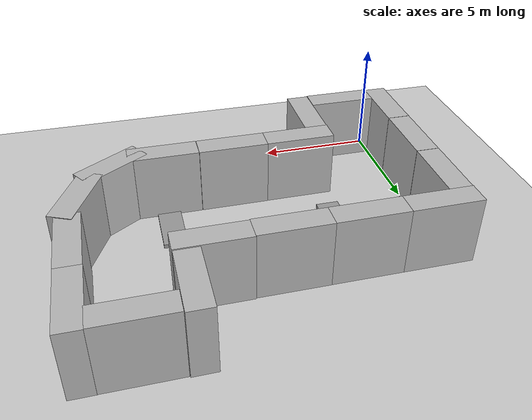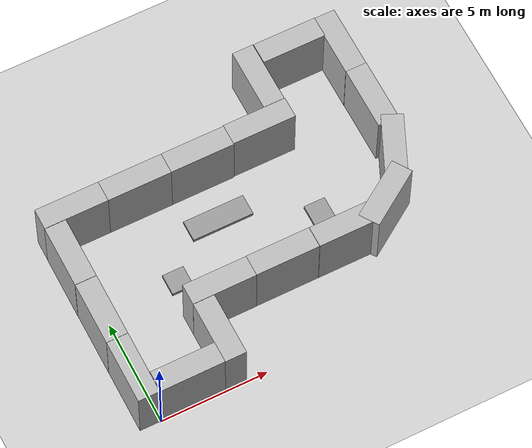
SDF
<sdf version="1.6">
 <world name="default">
  <light name="sun" type="directional">
   <pose>0 0 10 0 -0 0</pose>
   <diffuse>0.8 0.8 0.8 1</diffuse>
   <specular>0.2 0.2 0.2 1</specular>
   <attenuation>
    <range>1000</range>
    <constant>0.9</constant>
    <linear>0.01</linear>
    <quadratic>0.001</quadratic>
   </attenuation>
   <direction>-0.5 0.1 -0.9</direction>
  </light>
  <model name="ground_plane">
   <static>1</static>
   <link name="link">
    <collision name="collision">
     <geometry><plane><normal>0 0 1</normal><size>100 100</size></plane></geometry>
     <surface>
      <contact><collide_bitmask>65535</collide_bitmask></contact>
      <friction><ode><mu>100</mu><mu2>50</mu2></ode></friction>
     </surface>
    </collision>
    <visual name="visual">
     <cast_shadows>0</cast_shadows>
     <geometry><plane><normal>0 0 1</normal><size>100 100</size></plane></geometry>
     <material>
      <script><uri>file://media/materials/scripts/gazebo.material</uri><name>Gazebo/Grey</name></script>
     </material>
    </visual>
   </link>
  </model>
  <gravity>0 0 -9.8</gravity>
  <magnetic_field>6e-06 2.3e-05 -4.2e-05</magnetic_field>
  <atmosphere type="adiabatic"/>
  <physics name="default_physics" default="0" type="ode">
   <max_step_size>0.001</max_step_size>
   <real_time_factor>1</real_time_factor>
   <real_time_update_rate>1000</real_time_update_rate>
  </physics>
  <scene><ambient>0.4 0.4 0.4 1</ambient><background>0.7 0.7 0.7 1</background><shadows>1</shadows></scene>
  <spherical_coordinates>
   <surface_model>EARTH_WGS84</surface_model>
   <latitude_deg>0</latitude_deg>
   <longitude_deg>0</longitude_deg>
   <elevation>0</elevation>
   <heading_deg>0</heading_deg>
  </spherical_coordinates>
  <model name="brick_box_3x1x3">
   <static>1</static>
   <link name="chassis">
    <pose>0 0 1.5 0 -0 0</pose>
    <collision name="collision"><geometry><box><size>3 1 3</size></box></geometry></collision>
    <visual name="visual">
     <geometry><mesh><uri>model://brick_box_3x1x3/meshes/simple_box.dae</uri><scale>3 1 3</scale></mesh></geometry>
     <material>
      <script>
       <uri>model://brick_box_3x1x3/materials/scripts</uri>
       <uri>model://brick_box_3x1x3/materials/textures</uri>
       <name>BrickBox/Diffuse</name>
      </script>
     </material>
    </visual>
   </link>
   <pose>1.51624 0.50191 0 0 -0 0</pose>
  </model>
  <model name="brick_box_3x1x3_0">
   <static>1</static>
   <link name="chassis">
    <pose>0 0 1.5 0 -0 0</pose>
    <collision name="collision"><geometry><box><size>3 1 3</size></box></geometry></collision>
    <visual name="visual">
     <geometry><mesh><uri>model://brick_box_3x1x3/meshes/simple_box.dae</uri><scale>3 1 3</scale></mesh></geometry>
     <material>
      <script>
       <uri>model://brick_box_3x1x3/materials/scripts</uri>
       <uri>model://brick_box_3x1x3/materials/textures</uri>
       <name>BrickBox/Diffuse</name>
      </script>
     </material>
    </visual>
   </link>
   <pose>3.51375 1.50393 -0.02794 0 -0 1.5708</pose>
  </model>
  <model name="brick_box_3x1x3_0_clone">
   <static>1</static>
   <link name="chassis">
    <pose>0 0 1.5 0 -0 0</pose>
    <collision name="collision"><geometry><box><size>3 1 3</size></box></geometry></collision>
    <visual name="visual">
     <geometry><mesh><uri>model://brick_box_3x1x3/meshes/simple_box.dae</uri><scale>3 1 3</scale></mesh></geometry>
     <material>
      <script>
       <uri>model://brick_box_3x1x3/materials/scripts</uri>
       <uri>model://brick_box_3x1x3/materials/textures</uri>
       <name>BrickBox/Diffuse</name>
      </script>
     </material>
    </visual>
   </link>
   <pose>-0.499565 1.52608 -0.02794 0 -0 1.5708</pose>
  </model>
  <model name="brick_box_3x1x3_clone">
   <static>1</static>
   <link name="chassis">
    <pose>0 0 1.5 0 -0 0</pose>
    <collision name="collision"><geometry><box><size>3 1 3</size></box></geometry></collision>
    <visual name="visual">
     <geometry><mesh><uri>model://brick_box_3x1x3/meshes/simple_box.dae</uri><scale>3 1 3</scale></mesh></geometry>
     <material>
      <script>
       <uri>model://brick_box_3x1x3/materials/scripts</uri>
       <uri>model://brick_box_3x1x3/materials/textures</uri>
       <name>BrickBox/Diffuse</name>
      </script>
     </material>
    </visual>
   </link>
   <pose>4.50924 3.48498 0 0 -0 0</pose>
  </model>
  <model name="brick_box_3x1x3_clone_clone">
   <static>1</static>
   <link name="chassis">
    <pose>0 0 1.5 0 -0 0</pose>
    <collision name="collision"><geometry><box><size>3 1 3</size></box></geometry></collision>
    <visual name="visual">
     <geometry><mesh><uri>model://brick_box_3x1x3/meshes/simple_box.dae</uri><scale>3 1 3</scale></mesh></geometry>
     <material>
      <script>
       <uri>model://brick_box_3x1x3/materials/scripts</uri>
       <uri>model://brick_box_3x1x3/materials/textures</uri>
       <name>BrickBox/Diffuse</name>
      </script>
     </material>
    </visual>
   </link>
   <pose>7.50541 3.49349 0 0 -0 0</pose>
  </model>
  <model name="brick_box_3x1x3_0_clone_clone">
   <static>1</static>
   <link name="chassis">
    <pose>0 0 1.5 0 -0 0</pose>
    <collision name="collision"><geometry><box><size>3 1 3</size></box></geometry></collision>
    <visual name="visual">
     <geometry><mesh><uri>model://brick_box_3x1x3/meshes/simple_box.dae</uri><scale>3 1 3</scale></mesh></geometry>
     <material>
      <script>
       <uri>model://brick_box_3x1x3/materials/scripts</uri>
       <uri>model://brick_box_3x1x3/materials/textures</uri>
       <name>BrickBox/Diffuse</name>
      </script>
     </material>
    </visual>
   </link>
   <pose>-0.501636 4.53368 -0.02794 0 -0 1.5708</pose>
  </model>
  <model name="brick_box_3x1x3_0_clone_clone_clone">
   <static>1</static>
   <link name="chassis">
    <pose>0 0 1.5 0 -0 0</pose>
    <collision name="collision"><geometry><box><size>3 1 3</size></box></geometry></collision>
    <visual name="visual">
     <geometry><mesh><uri>model://brick_box_3x1x3/meshes/simple_box.dae</uri><scale>3 1 3</scale></mesh></geometry>
     <material>
      <script>
       <uri>model://brick_box_3x1x3/materials/scripts</uri>
       <uri>model://brick_box_3x1x3/materials/textures</uri>
       <name>BrickBox/Diffuse</name>
      </script>
     </material>
    </visual>
   </link>
   <pose>-0.506311 7.54462 -0.02794 0 -0 1.5708</pose>
  </model>
  <model name="brick_box_3x1x3_clone_clone_0">
   <static>1</static>
   <link name="chassis">
    <pose>0 0 1.5 0 -0 0</pose>
    <collision name="collision"><geometry><box><size>3 1 3</size></box></geometry></collision>
    <visual name="visual">
     <geometry><mesh><uri>model://brick_box_3x1x3/meshes/simple_box.dae</uri><scale>3 1 3</scale></mesh></geometry>
     <material>
      <script>
       <uri>model://brick_box_3x1x3/materials/scripts</uri>
       <uri>model://brick_box_3x1x3/materials/textures</uri>
       <name>BrickBox/Diffuse</name>
      </script>
     </material>
    </visual>
   </link>
   <pose>0.497941 9.50684 0 0 -0 0</pose>
  </model>
  <model name="brick_box_3x1x3_clone_clone_0_clone">
   <static>1</static>
   <link name="chassis">
    <pose>0 0 1.5 0 -0 0</pose>
    <collision name="collision"><geometry><box><size>3 1 3</size></box></geometry></collision>
    <visual name="visual">
     <geometry><mesh><uri>model://brick_box_3x1x3/meshes/simple_box.dae</uri><scale>3 1 3</scale></mesh></geometry>
     <material>
      <script>
       <uri>model://brick_box_3x1x3/materials/scripts</uri>
       <uri>model://brick_box_3x1x3/materials/textures</uri>
       <name>BrickBox/Diffuse</name>
      </script>
     </material>
    </visual>
   </link>
   <pose>3.49682 9.50712 0 0 -0 0</pose>
  </model>
  <model name="brick_box_3x1x3_clone_clone_0_clone_clone">
   <static>1</static>
   <link name="chassis">
    <pose>0 0 1.5 0 -0 0</pose>
    <collision name="collision"><geometry><box><size>3 1 3</size></box></geometry></collision>
    <visual name="visual">
     <geometry><mesh><uri>model://brick_box_3x1x3/meshes/simple_box.dae</uri><scale>3 1 3</scale></mesh></geometry>
     <material>
      <script>
       <uri>model://brick_box_3x1x3/materials/scripts</uri>
       <uri>model://brick_box_3x1x3/materials/textures</uri>
       <name>BrickBox/Diffuse</name>
      </script>
     </material>
    </visual>
   </link>
   <pose>6.49688 9.5128 0 0 -0 0</pose>
  </model>
  <model name="brick_box_3x1x3_clone_clone_0_clone_clone_clone_0">
   <static>1</static>
   <link name="chassis">
    <pose>0 0 1.5 0 -0 0</pose>
    <collision name="collision"><geometry><box><size>3 1 3</size></box></geometry></collision>
    <visual name="visual">
     <geometry><mesh><uri>model://brick_box_3x1x3/meshes/simple_box.dae</uri><scale>3 1 3</scale></mesh></geometry>
     <material>
      <script>
       <uri>model://brick_box_3x1x3/materials/scripts</uri>
       <uri>model://brick_box_3x1x3/materials/textures</uri>
       <name>BrickBox/Diffuse</name>
      </script>
     </material>
    </visual>
   </link>
   <pose>9.49333 9.54908 0 0 -0 0</pose>
  </model>
  <model name="brick_box_3x1x3_clone_clone_0_clone_clone_clone_0_clone">
   <static>1</static>
   <link name="chassis">
    <pose>0 0 1.5 0 -0 0</pose>
    <collision name="collision"><geometry><box><size>3 1 3</size></box></geometry></collision>
    <visual name="visual">
     <geometry><mesh><uri>model://brick_box_3x1x3/meshes/simple_box.dae</uri><scale>3 1 3</scale></mesh></geometry>
     <material>
      <script>
       <uri>model://brick_box_3x1x3/materials/scripts</uri>
       <uri>model://brick_box_3x1x3/materials/textures</uri>
       <name>BrickBox/Diffuse</name>
      </script>
     </material>
    </visual>
   </link>
   <pose>10.5143 3.49171 0 0 -0 0</pose>
  </model>
  <model name="brick_box_3x1x3_clone_clone_0_clone_clone_clone_0_clone_clone">
   <static>1</static>
   <link name="chassis">
    <pose>0 0 1.5 0 -0 0</pose>
    <collision name="collision"><geometry><box><size>3 1 3</size></box></geometry></collision>
    <visual name="visual">
     <geometry><mesh><uri>model://brick_box_3x1x3/meshes/simple_box.dae</uri><scale>3 1 3</scale></mesh></geometry>
     <material>
      <script>
       <uri>model://brick_box_3x1x3/materials/scripts</uri>
       <uri>model://brick_box_3x1x3/materials/textures</uri>
       <name>BrickBox/Diffuse</name>
      </script>
     </material>
    </visual>
   </link>
   <pose>12.4927 12.5439 0 0 -0 0</pose>
  </model>
  <model name="brick_box_3x1x3_0_clone_clone_clone_clone">
   <static>1</static>
   <link name="chassis">
    <pose>0 0 1.5 0 -0 0</pose>
    <collision name="collision"><geometry><box><size>3 1 3</size></box></geometry></collision>
    <visual name="visual">
     <geometry><mesh><uri>model://brick_box_3x1x3/meshes/simple_box.dae</uri><scale>3 1 3</scale></mesh></geometry>
     <material>
      <script>
       <uri>model://brick_box_3x1x3/materials/scripts</uri>
       <uri>model://brick_box_3x1x3/materials/textures</uri>
       <name>BrickBox/Diffuse</name>
      </script>
     </material>
    </visual>
   </link>
   <pose>10.4728 11.571 -0.02794 0 -0 1.5708</pose>
  </model>
  <model name="brick_box_3x1x3_0_clone_clone_clone_clone_0">
   <static>1</static>
   <link name="chassis">
    <pose>0 0 1.5 0 -0 0</pose>
    <collision name="collision"><geometry><box><size>3 1 3</size></box></geometry></collision>
    <visual name="visual">
     <geometry><mesh><uri>model://brick_box_3x1x3/meshes/simple_box.dae</uri><scale>3 1 3</scale></mesh></geometry>
     <material>
      <script>
       <uri>model://brick_box_3x1x3/materials/scripts</uri>
       <uri>model://brick_box_3x1x3/materials/textures</uri>
       <name>BrickBox/Diffuse</name>
      </script>
     </material>
    </visual>
   </link>
   <pose>14.4625 8.53431 -0.02794 0 -0 1.5708</pose>
  </model>
  <model name="brick_box_3x1x3_0_clone_clone_clone_clone_0_clone">
   <static>1</static>
   <link name="chassis">
    <pose>0 0 1.5 0 -0 0</pose>
    <collision name="collision"><geometry><box><size>3 1 3</size></box></geometry></collision>
    <visual name="visual">
     <geometry><mesh><uri>model://brick_box_3x1x3/meshes/simple_box.dae</uri><scale>3 1 3</scale></mesh></geometry>
     <material>
      <script>
       <uri>model://brick_box_3x1x3/materials/scripts</uri>
       <uri>model://brick_box_3x1x3/materials/textures</uri>
       <name>BrickBox/Diffuse</name>
      </script>
     </material>
    </visual>
   </link>
   <pose>14.4528 11.5347 -0.02794 0 -0 1.5708</pose>
  </model>
  <model name="brick_box_3x1x3_clone_clone_0_clone_clone_clone_0_clone_clone_0">
   <static>1</static>
   <link name="chassis">
    <pose>0 0 1.5 0 -0 0</pose>
    <collision name="collision"><geometry><box><size>3 1 3</size></box></geometry></collision>
    <visual name="visual">
     <geometry><mesh><uri>model://brick_box_3x1x3/meshes/simple_box.dae</uri><scale>3 1 3</scale></mesh></geometry>
     <material>
      <script>
       <uri>model://brick_box_3x1x3/materials/scripts</uri>
       <uri>model://brick_box_3x1x3/materials/textures</uri>
       <name>BrickBox/Diffuse</name>
      </script>
     </material>
    </visual>
   </link>
   <pose>12.69 3.9899 0 0 -0 0.588898</pose>
  </model>
  <model name="brick_box_3x1x3_clone_clone_0_clone_clone_clone_0_clone_clone_0_clone">
   <static>1</static>
   <link name="chassis">
    <pose>0 0 1.5 0 -0 0</pose>
    <collision name="collision"><geometry><box><size>3 1 3</size></box></geometry></collision>
    <visual name="visual">
     <geometry><mesh><uri>model://brick_box_3x1x3/meshes/simple_box.dae</uri><scale>3 1 3</scale></mesh></geometry>
     <material>
      <script>
       <uri>model://brick_box_3x1x3/materials/scripts</uri>
       <uri>model://brick_box_3x1x3/materials/textures</uri>
       <name>BrickBox/Diffuse</name>
      </script>
     </material>
    </visual>
   </link>
   <pose>14.1293 5.88394 0 0 -0 1.14515</pose>
  </model>
  <model name="unit_box">
   <pose>3.53502 5.55189 0.088083 0 -0 0</pose>
   <link name="link">
    <inertial>
     <mass>1</mass>
     <inertia>
      <ixx>0.166667</ixx>
      <ixy>0</ixy>
      <ixz>0</ixz>
      <iyy>0.166667</iyy>
      <iyz>0</iyz>
      <izz>0.166667</izz>
     </inertia>
    </inertial>
    <collision name="collision"><geometry><box><size>1 1 0.176166</size></box></geometry></collision>
    <visual name="visual">
     <geometry><box><size>1 1 0.176166</size></box></geometry>
     <material>
      <script><name>Gazebo/Grey</name><uri>file://media/materials/scripts/gazebo.material</uri></script>
     </material>
    </visual>
   </link>
  </model>
  <model name="unit_box_clone">
   <pose>6.44909 7.46901 0.088078 1e-05 0 1e-06</pose>
   <link name="link">
    <inertial>
     <mass>1</mass>
     <inertia>
      <ixx>0.166667</ixx>
      <ixy>0</ixy>
      <ixz>0</ixz>
      <iyy>0.166667</iyy>
      <iyz>0</iyz>
      <izz>0.166667</izz>
     </inertia>
    </inertial>
    <collision name="collision"><geometry><box><size>2.8895 1 0.176166</size></box></geometry></collision>
    <visual name="visual">
     <geometry><box><size>2.8895 1 0.176166</size></box></geometry>
     <material>
      <script><name>Gazebo/Grey</name><uri>file://media/materials/scripts/gazebo.material</uri></script>
     </material>
    </visual>
   </link>
  </model>
  <model name="unit_box_clone_0">
   <pose>10.5088 5.17962 0.088083 0 -0 0.000258</pose>
   <link name="link">
    <inertial>
     <mass>1</mass>
     <inertia>
      <ixx>0.166667</ixx>
      <ixy>0</ixy>
      <ixz>0</ixz>
      <iyy>0.166667</iyy>
      <iyz>0</iyz>
      <izz>0.166667</izz>
     </inertia>
    </inertial>
    <collision name="collision"><geometry><box><size>1 2.17224 0.176166</size></box></geometry></collision>
    <visual name="visual">
     <geometry><box><size>1 2.17224 0.176166</size></box></geometry>
     <material>
      <script><name>Gazebo/Grey</name><uri>file://media/materials/scripts/gazebo.material</uri></script>
     </material>
    </visual>
   </link>
  </model>
 </world>
</sdf>
